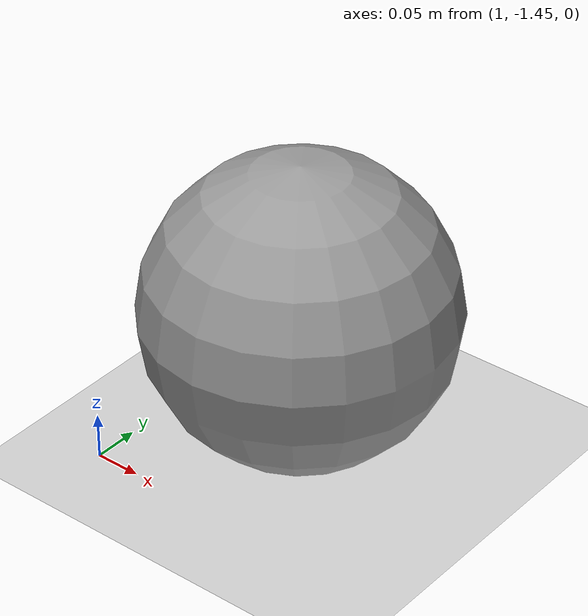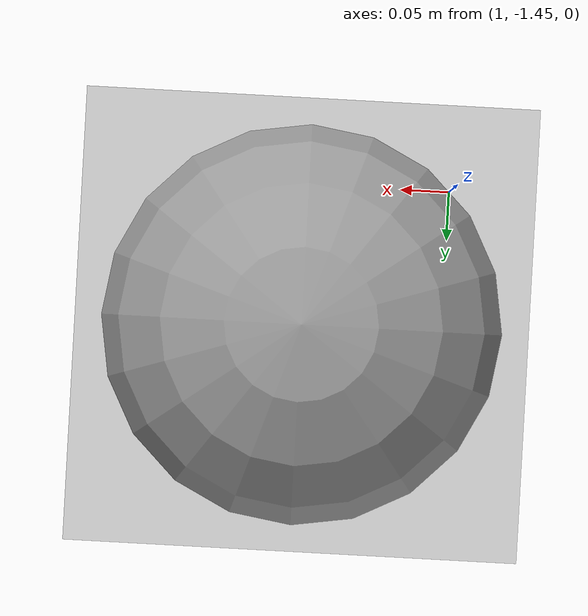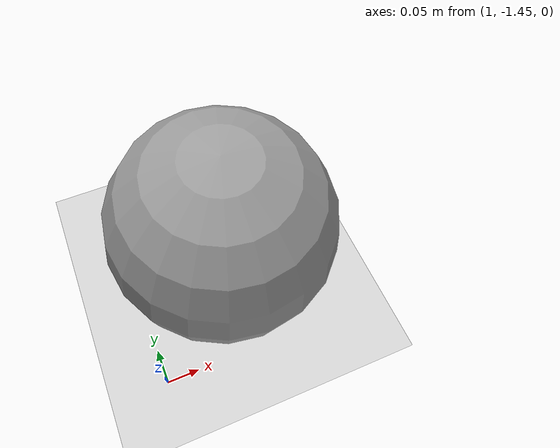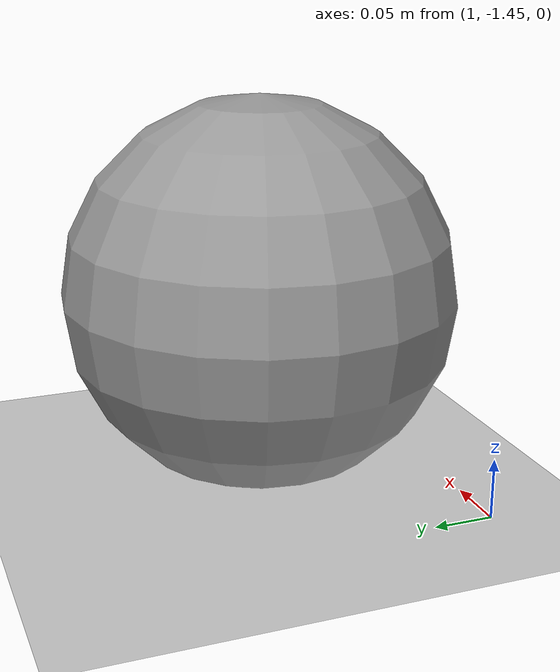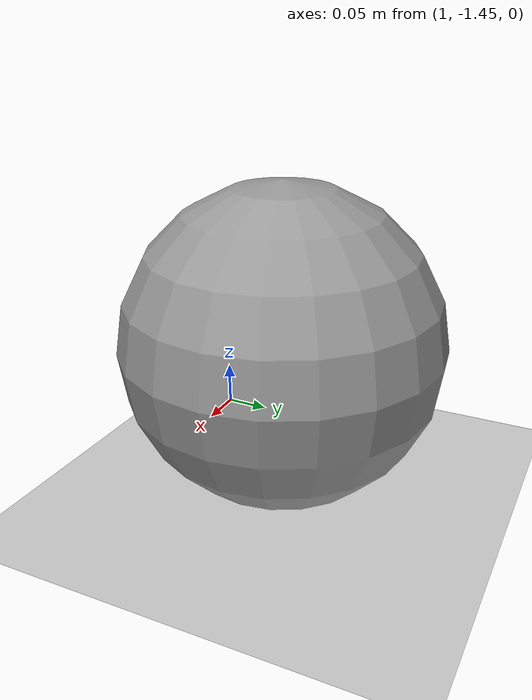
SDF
<sdf version="1.4">
 <world name="default">
  <include><uri>model://ground_plane</uri></include>
  <include><uri>model://sun</uri></include>
  <light name="sun" type="directional">
   <pose>0 0 10 0 -0 0</pose>
   <diffuse>0.8 0.8 0.8 1</diffuse>
   <specular>0.1 0.1 0.1 1</specular>
   <attenuation>
    <range>1000</range>
    <constant>0.9</constant>
    <linear>0.01</linear>
    <quadratic>0.001</quadratic>
   </attenuation>
   <direction>-0.5 0.5 -1</direction>
  </light>
  <model name="unit_sphere">
   <pose>1.14411 -1.30574 0.163291 0 -0 0</pose>
   <link name="link">
    <inertial>
     <mass>1</mass>
     <inertia><ixx>0.1</ixx><ixy>0</ixy><ixz>0</ixz><iyy>0.1</iyy><iyz>0</iyz><izz>0.1</izz></inertia>
    </inertial>
    <collision name="collision"><geometry><sphere><radius>0.163291</radius></sphere></geometry></collision>
    <visual name="visual">
     <geometry><sphere><radius>0.163291</radius></sphere></geometry>
     <material>
      <script><name>Gazebo/Grey</name><uri>file://media/materials/scripts/gazebo.material</uri></script>
     </material>
    </visual>
   </link>
  </model>
 </world>
</sdf>
